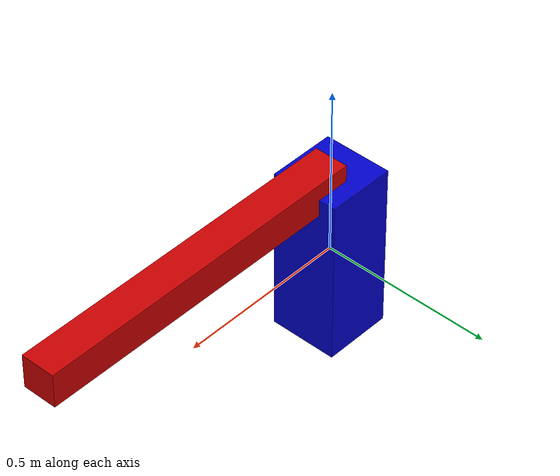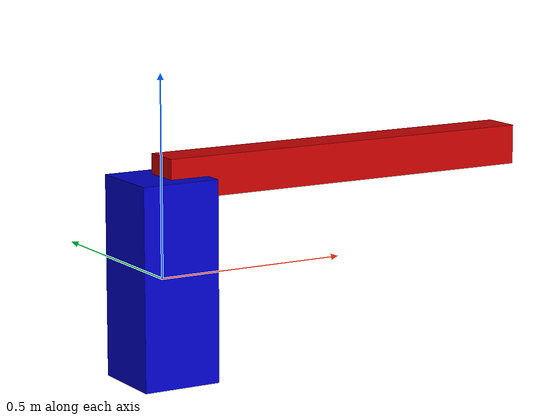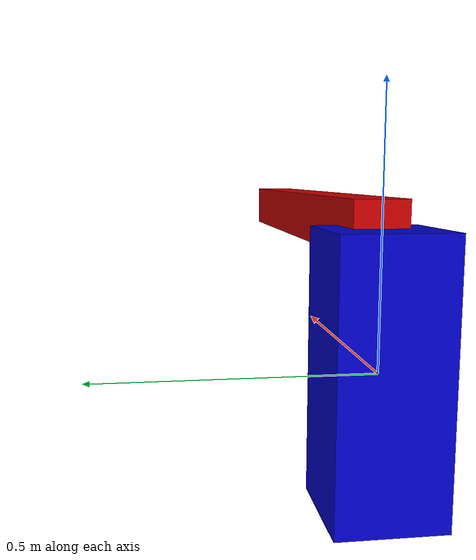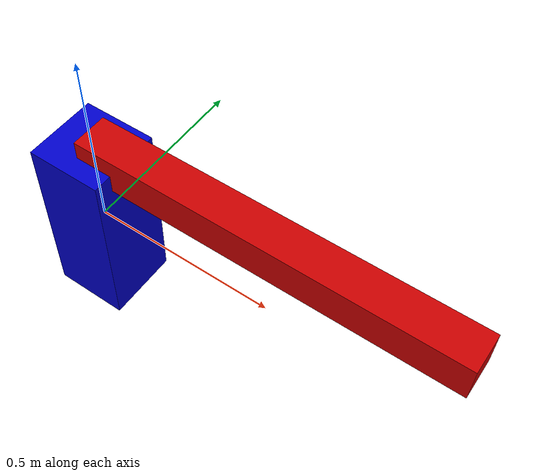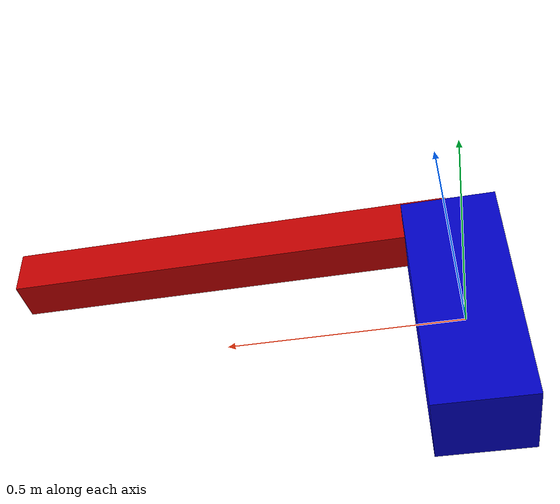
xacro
<?xml version="1.0"?>
<robot xmlns:xacro="http://www.ros.org/wiki/xacro" name="simple_arm_xacro">

  <!-- Include all properties and macros -->
  <xacro:include filename="$(find robotics_sim_project)/urdf/common/properties.xacro"/>
  <xacro:include filename="$(find robotics_sim_project)/urdf/common/inertias.xacro"/>
  <xacro:include filename="$(find robotics_sim_project)/urdf/common/materials.xacro"/>
  <xacro:include filename="$(find robotics_sim_project)/urdf/common/gazebo_materials.xacro"/>

  <!-- Base Link (Now using properties and macros) -->
  <link name="base_link">
    <visual>
      <geometry>
        <box size="${base_width} ${base_length} ${base_height}"/>
      </geometry>
      <material name="blue"/>
    </visual>
    <collision>
      <geometry>
        <box size="${base_width} ${base_length} ${base_height}"/>
      </geometry>
    </collision>
    <xacro:box_inertia m="${base_mass}"
                       x="${base_width}"
                       y="${base_length}"
                       z="${base_height}"/>
  </link>

  <!-- Arm Link -->
  <link name="arm_link">
    <visual>
      <origin xyz="${arm_length/2} 0 0" rpy="0 0 0"/>
      <geometry>
        <box size="${arm_length} ${arm_width} ${arm_height}"/>
      </geometry>
      <material name="red"/>
    </visual>
    <collision>
      <origin xyz="${arm_length/2} 0 0" rpy="0 0 0"/>
      <geometry>
        <box size="${arm_length} ${arm_width} ${arm_height}"/>
      </geometry>
    </collision>
    <inertial>
      <origin xyz="${arm_length/2} 0 0" rpy="0 0 0"/>
      <mass value="${arm_mass}"/>
      <inertia ixx="${arm_mass*(arm_width*arm_width+arm_height*arm_height)/12}"
               ixy="0" ixz="0"
               iyy="${arm_mass*(arm_length*arm_length+arm_height*arm_height)/12}"
               iyz="0"
               izz="${arm_mass*(arm_length*arm_length+arm_width*arm_width)/12}"/>
    </inertial>
  </link>

  <!-- Joint -->
  <joint name="base_to_arm" type="revolute">
    <parent link="base_link"/>
    <child link="arm_link"/>
    <origin xyz="0 0 ${base_height/2}" rpy="0 0 0"/>
    <axis xyz="0 0 1"/>
    <limit lower="${-pi/2}" upper="${pi/2}" effort="10.0" velocity="1.0"/>
  </joint>

  <!-- Apply Gazebo Materials -->
  <xacro:gazebo_material link_name="base_link" material_name="Blue"/>
  <xacro:gazebo_material link_name="arm_link" material_name="Red"/>

</robot>

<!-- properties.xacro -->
<robot xmlns:xacro="http://www.ros.org/wiki/xacro">

  <!-- Geometric Properties -->
  <xacro:property name="arm_length" value="1.0"/>
  <xacro:property name="arm_width" value="0.1"/>
  <xacro:property name="arm_height" value="0.1"/>
  <xacro:property name="arm_mass" value="1.0"/>

  <xacro:property name="base_width" value="0.2"/>
  <xacro:property name="base_length" value="0.2"/>
  <xacro:property name="base_height" value="0.5"/>
  <xacro:property name="base_mass" value="5.0"/>

  <!-- Custom mathematical constant -->
  <!-- Note: DO NOT define 'pi' because xacro already provides it -->
  <xacro:property name="my_pi" value="3.14159"/>

</robot>

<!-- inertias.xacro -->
<robot xmlns:xacro="http://www.ros.org/wiki/xacro">

  <!-- Box Inertia Macro -->
  <xacro:macro name="box_inertia" params="m x y z">
    <inertial>
      <mass value="${m}"/>
      <inertia ixx="${m*(y*y+z*z)/12}" ixy="0" ixz="0"
               iyy="${m*(x*x+z*z)/12}" iyz="0"
               izz="${m*(x*x+y*y)/12}"/>
    </inertial>
  </xacro:macro>

  <!-- Cylinder Inertia Macro -->
  <xacro:macro name="cylinder_inertia" params="m r h">
    <inertial>
      <mass value="${m}"/>
      <inertia ixx="${m*(3*r*r+h*h)/12}" ixy="0" ixz="0"
               iyy="${m*(3*r*r+h*h)/12}" iyz="0"
               izz="${m*r*r/2}"/>
    </inertial>
  </xacro:macro>

  <!-- Sphere Inertia Macro -->
  <xacro:macro name="sphere_inertia" params="m r">
    <inertial>
      <mass value="${m}"/>
      <inertia ixx="${2*m*r*r/5}" ixy="0" ixz="0"
               iyy="${2*m*r*r/5}" iyz="0"
               izz="${2*m*r*r/5}"/>
    </inertial>
  </xacro:macro>

</robot>

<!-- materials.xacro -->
<robot xmlns:xacro="http://www.ros.org/wiki/xacro">

  <!-- RViz Materials (for visualization) -->
  <material name="blue">
    <color rgba="0 0 0.8 1"/>
  </material>

  <material name="red">
    <color rgba="0.8 0 0 1"/>
  </material>

  <material name="green">
    <color rgba="0 0.8 0 1"/>
  </material>

  <material name="yellow">
    <color rgba="0.8 0.8 0 1"/>
  </material>

  <material name="black">
    <color rgba="0 0 0 1"/>
  </material>

  <material name="white">
    <color rgba="1 1 1 1"/>
  </material>

</robot>
